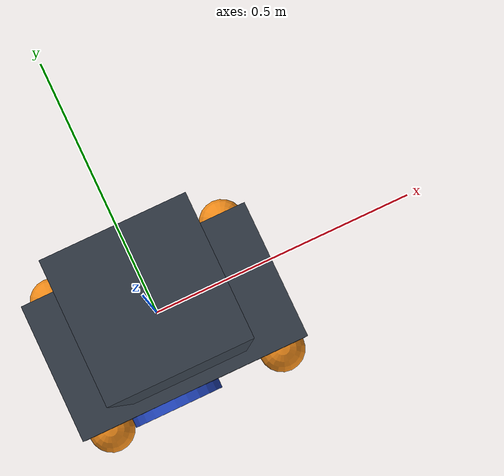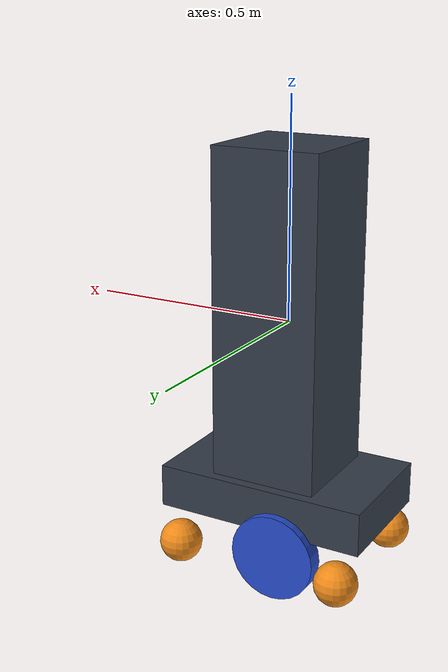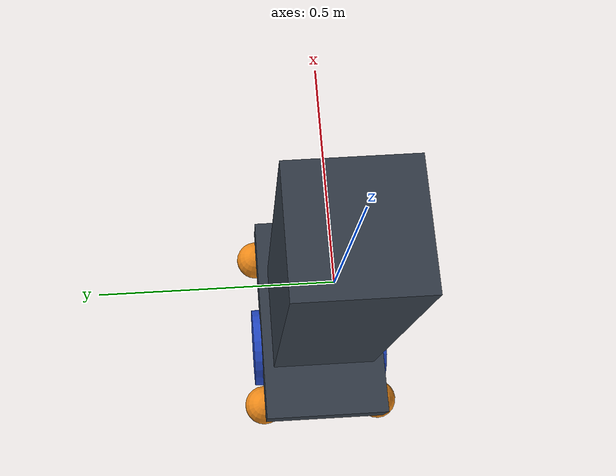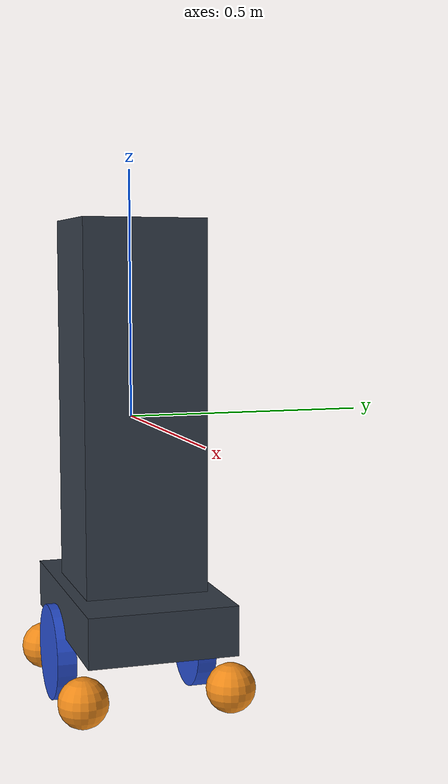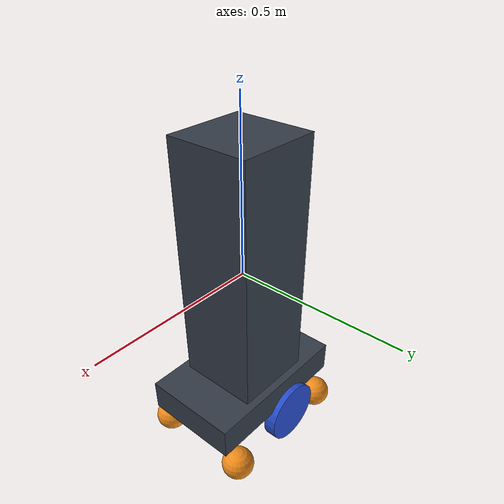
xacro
<?xml version="1.0" ?>
<robot name="robody" xmlns:xacro="http://www.ros.org/wiki/xacro">
  <material name="black">
    <color rgba="0.0 0.0 0.0 1.0"/>
  </material>
  <material name="blue">
    <color rgba="0.203125 0.23828125 0.28515625 1.0"/>
  </material>
  <material name="green">
    <color rgba="0.0 0.8 0.0 1.0"/>
  </material>
  <material name="grey">
    <color rgba="0.2 0.2 0.2 1.0"/>
  </material>
  <material name="orange">
    <color rgba="1.0 0.423529411765 0.0392156862745 1.0"/>
  </material>
  <material name="brown">
    <color rgba="0.870588235294 0.811764705882 0.764705882353 1.0"/>
  </material>
  <material name="red">
    <color rgba="0.80078125 0.12890625 0.1328125 1.0"/>
  </material>
  <material name="white">
    <color rgba="1.0 1.0 1.0 1.0"/>
  </material>

  <gazebo reference="link_chassis">
    <material>Gazebo/Orange</material>
  </gazebo>
  <gazebo reference="link_left_wheel">
    <material>Gazebo/Blue</material>
  </gazebo>
  <gazebo reference="link_right_wheel">
    <material>Gazebo/Blue</material>
  </gazebo>

  <gazebo>
    <plugin filename="libgazebo_ros_diff_drive.so" name="differential_drive_controller">
      <legacyMode>false</legacyMode>
      <alwaysOn>true</alwaysOn>
      <updateRate>20</updateRate>
      <leftJoint>joint_left_wheel</leftJoint>
      <rightJoint>joint_right_wheel</rightJoint>
      <wheelSeparation>0.2</wheelSeparation>
      <wheelDiameter>0.2</wheelDiameter>
      <torque>0.1</torque>
      <commandTopic>/roboy/pinky/middleware/espchair/wheels/assisted_navigation</commandTopic>
      <odometryTopic>odom</odometryTopic>
      <odometryFrame>odom</odometryFrame>
      <robotBaseFrame>link_chassis</robotBaseFrame>
    </plugin>
  </gazebo>

  <!-- ROBODYS BODY -->
  <link name="link_chassis">
    <!-- pose and inertial -->
    <pose>0 0 0.1 0 0 0</pose>
    <inertial>
      <mass value="5"/>
      <origin rpy="0 0 0" xyz="0 0 0.1"/>
      <inertia ixx="0.0395416666667" ixy="0" ixz="0" iyy="0.106208333333" iyz="0" izz="0.106208333333"/>
    </inertial>

    <!-- base -->
    <collision name="collision_base">
      <geometry>
        <box size="0.5 0.3 0.1" xyz="0 0 -0.3"/>
      </geometry>
    </collision>
    <visual>
      <origin rpy="0 0 0" xyz="0 0 -0.4"/>
      <geometry>
        <box size="0.5 0.3 0.1"/>
      </geometry>
      <material name="blue"/>
    </visual>

    <!-- body -->
    <collision name="collision_body">
      <geometry>
        <box size="0.25 0.25 0.8"/>
      </geometry>
    </collision>
    <visual>
      <origin rpy="0 0 0" xyz="0 0 0"/>
      <geometry>
        <box size="0.25 0.25 0.8"/>
      </geometry>
      <material name="blue"/>
    </visual>

    <!-- caster front right -->
    <collision name="caster_front_right_collision">
      <origin rpy=" 0 0 0" xyz="0.35 0.15 -0.53"/>
      <geometry>
        <sphere radius="0.05"/>
      </geometry>
      <surface>
        <friction>
          <ode>
            <mu>0</mu>
            <mu2>0</mu2>
            <slip1>2.0</slip1>
            <slip2>2.0</slip2>
          </ode>
        </friction>
      </surface>
    </collision>
    <visual name="caster_front_right_visual">
      <origin rpy=" 0 0 0" xyz="0.2 0.15 -0.53"/>
      <geometry>
        <sphere radius="0.05"/>
      </geometry>
    </visual>

    <!-- caster front left -->
    <collision name="caster_front_left_collision">
      <origin rpy=" 0 0 0" xyz="0.35 -0.15 -0.53"/>
      <geometry>
        <sphere radius="0.05"/>
      </geometry>
      <surface>
        <friction>
          <ode>
            <mu>0</mu>
            <mu2>0</mu2>
            <slip1>2.0</slip1>
            <slip2>2.0</slip2>
          </ode>
        </friction>
      </surface>
    </collision>
    <visual name="caster_front_left_visual">
      <origin rpy=" 0 0 0" xyz="0.2 -0.15 -0.53"/>
      <geometry>
        <sphere radius="0.05"/>
      </geometry>
    </visual>

  <!-- caster back right -->
    <collision name="caster_back_right_collision">
        <origin rpy=" 0 0 0" xyz="-0.35 0.15 -0.53"/>
        <geometry>
        <sphere radius="0.05"/>
        </geometry>
        <surface>
        <friction>
            <ode>
            <mu>0</mu>
            <mu2>0</mu2>
            <slip1>2.0</slip1>
            <slip2>2.0</slip2>
            </ode>
        </friction>
        </surface>
    </collision>
    <visual name="caster_back_right_visual">
        <origin rpy=" 0 0 0" xyz="-0.2 0.15 -0.53"/>
        <geometry>
        <sphere radius="0.05"/>
        </geometry>
    </visual>
    <!-- caster back left -->
    <collision name="caster_back_left_collision">
      <origin rpy=" 0 0 0" xyz="-0.35 -0.15 -0.53"/>
      <geometry>
        <sphere radius="0.05"/>
      </geometry>
      <surface>
        <friction>
          <ode>
            <mu>0</mu>
            <mu2>0</mu2>
            <slip1>2.0</slip1>
            <slip2>2.0</slip2>
          </ode>
        </friction>
      </surface>
    </collision>
    <visual name="caster_back_left_visual">
      <origin rpy=" 0 0 0" xyz="-0.2 -0.15 -0.53"/>
      <geometry>
        <sphere radius="0.05"/>
      </geometry>
    </visual>
</link>
  <link name="link_right_wheel">
    <inertial>
      <mass value="0.2"/>
      <origin rpy="0 1.5707 1.5707" xyz="0 0 0"/>
      <inertia ixx="0.000526666666667" ixy="0" ixz="0" iyy="0.000526666666667" iyz="0" izz="0.001"/>
    </inertial>
    <collision name="link_right_wheel_collision">
      <origin rpy="0 1.5707 1.5707" xyz="0 0 0"/>
      <geometry>
        <cylinder length="0.04" radius="0.1"/>
      </geometry>
    </collision>
    <visual name="link_right_wheel_visual">
      <origin rpy="0 1.5707 1.5707" xyz="0 0 0"/>
      <geometry>
        <cylinder length="0.04" radius="0.1"/>
      </geometry>
    </visual>
  </link>

  <joint name="joint_right_wheel" type="continuous">
    <origin rpy="0 0 0" xyz="-0.05 0.15 -0.5"/>
    <child link="link_right_wheel"/>
    <parent link="link_chassis"/>
    <axis rpy="0 0 0" xyz="0 1 0"/>
    <limit effort="10000" velocity="1000"/>
    <joint_properties damping="1.0" friction="1.0"/>
  </joint>

  <link name="link_left_wheel">
    <inertial>
      <mass value="0.2"/>
      <origin rpy="0 1.5707 1.5707" xyz="0 0 0"/>
      <inertia ixx="0.000526666666667" ixy="0" ixz="0" iyy="0.000526666666667" iyz="0" izz="0.001"/>
    </inertial>
    <collision name="link_left_wheel_collision">
      <origin rpy="0 1.5707 1.5707" xyz="0 0 0"/>
      <geometry>
        <cylinder length="0.04" radius="0.1"/>
      </geometry>
    </collision>
    <visual name="link_left_wheel_visual">
      <origin rpy="0 1.5707 1.5707" xyz="0 0 0"/>
      <geometry>
        <cylinder length="0.04" radius="0.1"/>
      </geometry>
    </visual>
  </link>

  <joint name="joint_left_wheel" type="continuous">
    <origin rpy="0 0 0" xyz="-0.05 -0.15 -0.5"/>
    <child link="link_left_wheel"/>
    <parent link="link_chassis"/>
    <axis rpy="0 0 0" xyz="0 1 0"/>
    <limit effort="10000" velocity="1000"/>
    <joint_properties damping="1.0" friction="1.0"/>
  </joint>
</robot>
